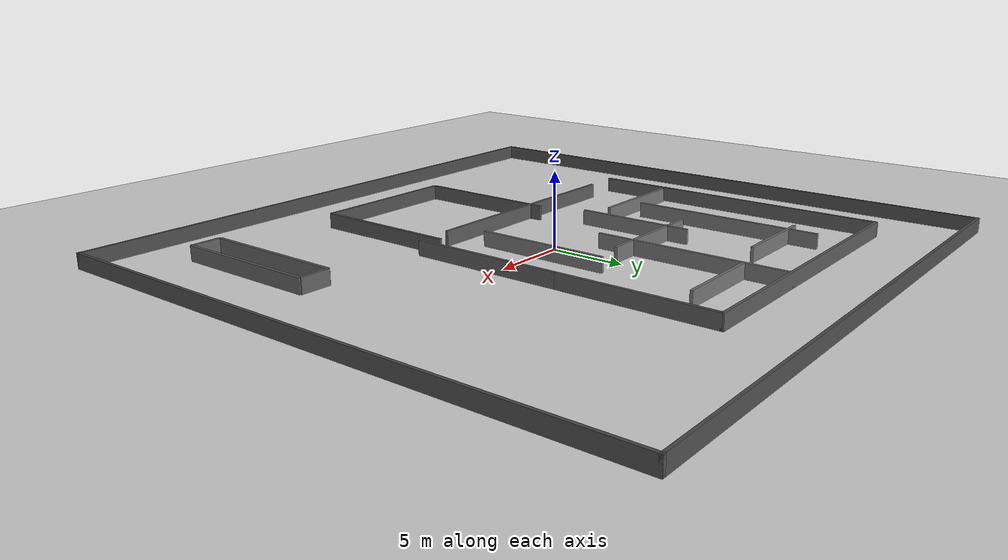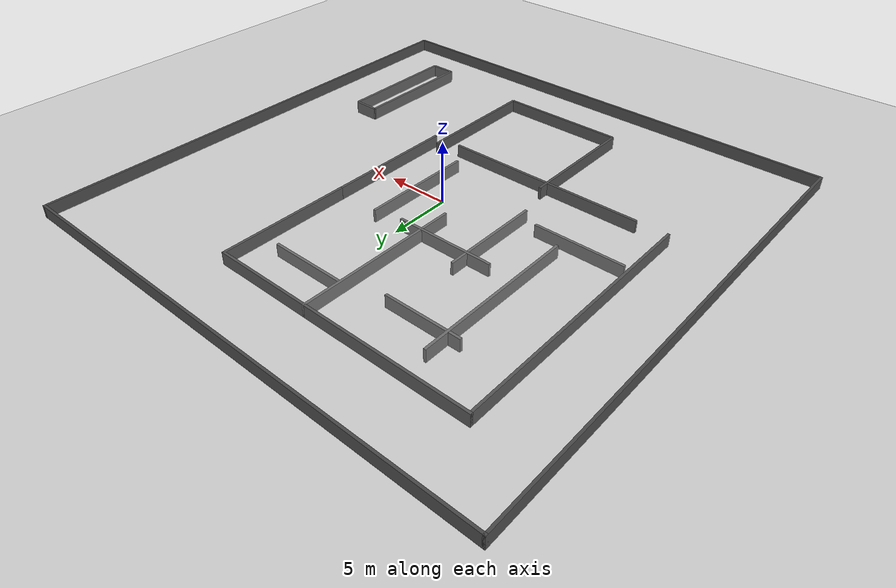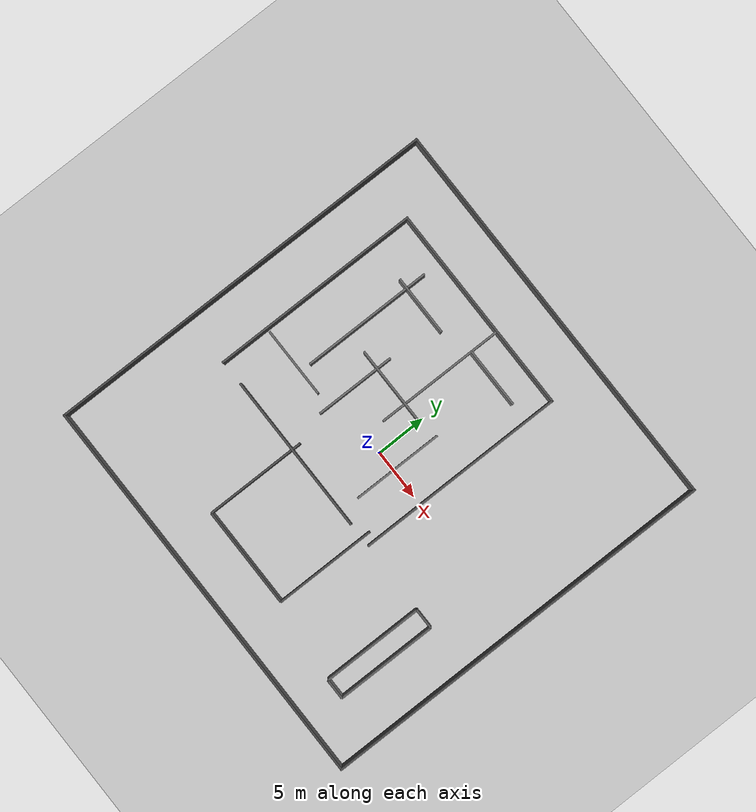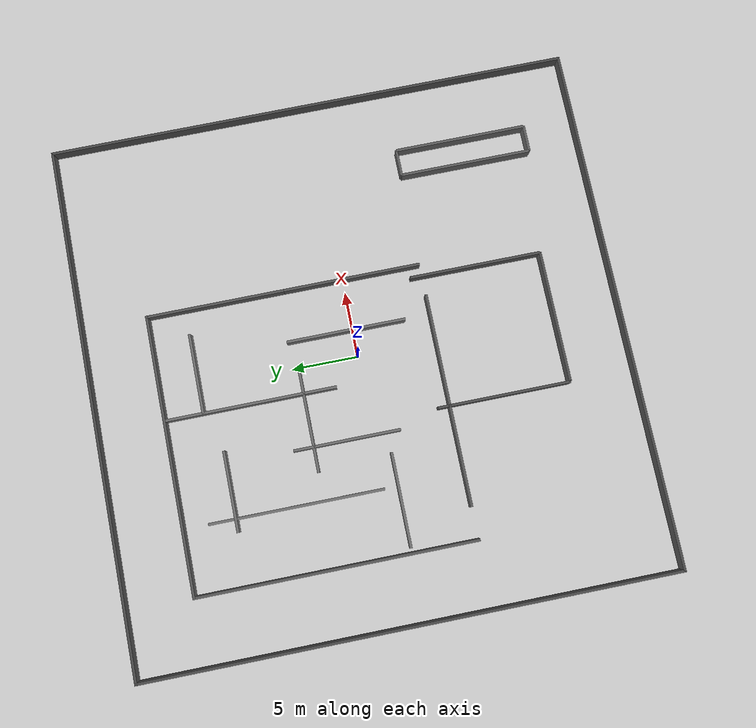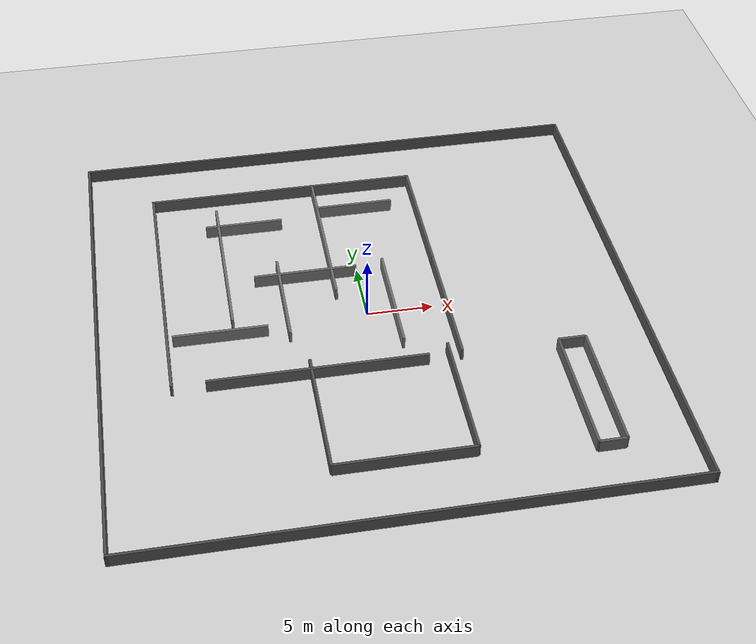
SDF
<?xml version="1.0" ?>
<sdf version="1.9">
  <world name="maze_world">
    <physics name="1ms" default="true" type="ode">
      <max_step_size>0.001</max_step_size>
      <real_time_factor>1.0</real_time_factor>
      <real_time_update_rate>1000.0</real_time_update_rate>
    </physics>

    <plugin filename="gz-sim-physics-system" name="gz::sim::systems::Physics">
    </plugin>
    <plugin filename="gz-sim-user-commands-system" name="gz::sim::systems::UserCommands">
    </plugin>
    <plugin filename="gz-sim-scene-broadcaster-system" name="gz::sim::systems::SceneBroadcaster">
    </plugin>

    <scene>
      <ambient>0.4 0.4 0.4 1.0</ambient>
      <background>0.7 0.7 0.8 1.0</background>
      <shadows>true</shadows>
    </scene>

    <light type="directional" name="sun">
      <cast_shadows>true</cast_shadows>
      <pose>0 0 10 0 0 0</pose>
      <diffuse>0.8 0.8 0.8 1</diffuse>
      <specular>0.2 0.2 0.2 1</specular>
      <direction>-0.5 0.1 -0.9</direction>
    </light>

    <model name="ground_plane">
      <static>true</static>
      <link name="link">
        <collision name="collision">
          <geometry>
            <plane>
              <normal>0 0 1</normal>
              <size>60 60</size>
            </plane>
          </geometry>
        </collision>
        <visual name="visual">
          <geometry>
            <plane>
              <normal>0 0 1</normal>
              <size>60 60</size>
            </plane>
          </geometry>
          <material>
            <ambient>0.85 0.85 0.85 1</ambient>
            <diffuse>0.85 0.85 0.85 1</diffuse>
          </material>
        </visual>
      </link>
    </model>

    <model name="maze_walls">
      <static>true</static>

      <link name="wall_outer_1">
        <pose>0 -19.9 0.5 0 0 0</pose>
        <collision name="collision"><geometry><box><size>40 0.2 1.0</size></box></geometry></collision>
        <visual name="visual"><geometry><box><size>40 0.2 1.0</size></box></geometry><material><ambient>0.3 0.3 0.3 1</ambient><diffuse>0.3 0.3 0.3 1</diffuse></material></visual>
      </link>
      <link name="wall_outer_2">
        <pose>0 19.9 0.5 0 0 0</pose>
        <collision name="collision"><geometry><box><size>40 0.2 1.0</size></box></geometry></collision>
        <visual name="visual"><geometry><box><size>40 0.2 1.0</size></box></geometry><material><ambient>0.3 0.3 0.3 1</ambient><diffuse>0.3 0.3 0.3 1</diffuse></material></visual>
      </link>
      <link name="wall_outer_3">
        <pose>-19.9 0 0.5 0 0 0</pose>
        <collision name="collision"><geometry><box><size>0.2 40 1.0</size></box></geometry></collision>
        <visual name="visual"><geometry><box><size>0.2 40 1.0</size></box></geometry><material><ambient>0.3 0.3 0.3 1</ambient><diffuse>0.3 0.3 0.3 1</diffuse></material></visual>
      </link>
      <link name="wall_outer_4">
        <pose>19.9 0 0.5 0 0 0</pose>
        <collision name="collision"><geometry><box><size>0.2 40 1.0</size></box></geometry></collision>
        <visual name="visual"><geometry><box><size>0.2 40 1.0</size></box></geometry><material><ambient>0.3 0.3 0.3 1</ambient><diffuse>0.3 0.3 0.3 1</diffuse></material></visual>
      </link>

      <link name="maze_border_north">
        <pose>-4.5 14.9 0.5 0 0 0</pose>
        <collision name="collision"><geometry><box><size>21.0 0.2 1.0</size></box></geometry></collision>
        <visual name="visual"><geometry><box><size>21.0 0.2 1.0</size></box></geometry><material><ambient>0.35 0.35 0.35 1</ambient><diffuse>0.35 0.35 0.35 1</diffuse></material></visual>
      </link>
      <link name="maze_border_west">
        <pose>-14.9 4.5 0.5 0 0 0</pose>
        <collision name="collision"><geometry><box><size>0.2 21.0 1.0</size></box></geometry></collision>
        <visual name="visual"><geometry><box><size>0.2 21.0 1.0</size></box></geometry><material><ambient>0.35 0.35 0.35 1</ambient><diffuse>0.35 0.35 0.35 1</diffuse></material></visual>
      </link>
      <link name="maze_border_south">
        <pose>-4.5 -5.9 0.5 0 0 0</pose>
        <collision name="collision"><geometry><box><size>16.0 0.2 1.0</size></box></geometry></collision>
        <visual name="visual"><geometry><box><size>16.0 0.2 1.0</size></box></geometry><material><ambient>0.35 0.35 0.35 1</ambient><diffuse>0.35 0.35 0.35 1</diffuse></material></visual>
      </link>
      <link name="maze_border_east_upper">
        <pose>5.9 9.7 0.5 0 0 0</pose>
        <collision name="collision"><geometry><box><size>0.2 10.4 1.0</size></box></geometry></collision>
        <visual name="visual"><geometry><box><size>0.2 10.4 1.0</size></box></geometry><material><ambient>0.35 0.35 0.35 1</ambient><diffuse>0.35 0.35 0.35 1</diffuse></material></visual>
      </link>
      <link name="maze_border_east_lower">
        <pose>5.9 -0.7 0.5 0 0 0</pose>
        <collision name="collision"><geometry><box><size>0.2 10.4 1.0</size></box></geometry></collision>
        <visual name="visual"><geometry><box><size>0.2 10.4 1.0</size></box></geometry><material><ambient>0.35 0.35 0.35 1</ambient><diffuse>0.35 0.35 0.35 1</diffuse></material></visual>
      </link>

      <link name="maze_v1">
        <pose>-10.0 6.5 0.5 0 0 0</pose>
        <collision name="collision"><geometry><box><size>0.2 13.0 1.0</size></box></geometry></collision>
        <visual name="visual"><geometry><box><size>0.2 13.0 1.0</size></box></geometry><material><ambient>0.45 0.45 0.45 1</ambient><diffuse>0.45 0.45 0.45 1</diffuse></material></visual>
      </link>
      <link name="maze_v2">
        <pose>-6.0 2.0 0.5 0 0 0</pose>
        <collision name="collision"><geometry><box><size>0.2 8.0 1.0</size></box></geometry></collision>
        <visual name="visual"><geometry><box><size>0.2 8.0 1.0</size></box></geometry><material><ambient>0.45 0.45 0.45 1</ambient><diffuse>0.45 0.45 0.45 1</diffuse></material></visual>
      </link>
      <link name="maze_v3">
        <pose>-2.0 8.5 0.5 0 0 0</pose>
        <collision name="collision"><geometry><box><size>0.2 13.0 1.0</size></box></geometry></collision>
        <visual name="visual"><geometry><box><size>0.2 13.0 1.0</size></box></geometry><material><ambient>0.45 0.45 0.45 1</ambient><diffuse>0.45 0.45 0.45 1</diffuse></material></visual>
      </link>
      <link name="maze_v4">
        <pose>2.0 0.5 0.5 0 0 0</pose>
        <collision name="collision"><geometry><box><size>0.2 9.0 1.0</size></box></geometry></collision>
        <visual name="visual"><geometry><box><size>0.2 9.0 1.0</size></box></geometry><material><ambient>0.45 0.45 0.45 1</ambient><diffuse>0.45 0.45 0.45 1</diffuse></material></visual>
      </link>
      <link name="maze_h1">
        <pose>-8.0 11.0 0.5 0 0 0</pose>
        <collision name="collision"><geometry><box><size>6.0 0.2 1.0</size></box></geometry></collision>
        <visual name="visual"><geometry><box><size>6.0 0.2 1.0</size></box></geometry><material><ambient>0.45 0.45 0.45 1</ambient><diffuse>0.45 0.45 0.45 1</diffuse></material></visual>
      </link>
      <link name="maze_h2">
        <pose>-4.0 4.5 0.5 0 0 0</pose>
        <collision name="collision"><geometry><box><size>7.8 0.2 1.0</size></box></geometry></collision>
        <visual name="visual"><geometry><box><size>7.8 0.2 1.0</size></box></geometry><material><ambient>0.45 0.45 0.45 1</ambient><diffuse>0.45 0.45 0.45 1</diffuse></material></visual>
      </link>
      <link name="maze_h3">
        <pose>-11.0 -1.0 0.5 0 0 0</pose>
        <collision name="collision"><geometry><box><size>7.0 0.2 1.0</size></box></geometry></collision>
        <visual name="visual"><geometry><box><size>7.0 0.2 1.0</size></box></geometry><material><ambient>0.45 0.45 0.45 1</ambient><diffuse>0.45 0.45 0.45 1</diffuse></material></visual>
      </link>
      <link name="maze_h4">
        <pose>1.0 12.0 0.5 0 0 0</pose>
        <collision name="collision"><geometry><box><size>6.0 0.2 1.0</size></box></geometry></collision>
        <visual name="visual"><geometry><box><size>6.0 0.2 1.0</size></box></geometry><material><ambient>0.45 0.45 0.45 1</ambient><diffuse>0.45 0.45 0.45 1</diffuse></material></visual>
      </link>

      <link name="open_area_south">
        <pose>0.0 -15.0 0.5 0 0 0</pose>
        <collision name="collision"><geometry><box><size>10.0 0.2 1.0</size></box></geometry></collision>
        <visual name="visual"><geometry><box><size>10.0 0.2 1.0</size></box></geometry><material><ambient>0.32 0.32 0.32 1</ambient><diffuse>0.32 0.32 0.32 1</diffuse></material></visual>
      </link>
      <link name="open_area_west">
        <pose>-5.0 -10.0 0.5 0 0 0</pose>
        <collision name="collision"><geometry><box><size>0.2 10.0 1.0</size></box></geometry></collision>
        <visual name="visual"><geometry><box><size>0.2 10.0 1.0</size></box></geometry><material><ambient>0.32 0.32 0.32 1</ambient><diffuse>0.32 0.32 0.32 1</diffuse></material></visual>
      </link>
      <link name="open_area_east">
        <pose>5.0 -10.0 0.5 0 0 0</pose>
        <collision name="collision"><geometry><box><size>0.2 10.0 1.0</size></box></geometry></collision>
        <visual name="visual"><geometry><box><size>0.2 10.0 1.0</size></box></geometry><material><ambient>0.32 0.32 0.32 1</ambient><diffuse>0.32 0.32 0.32 1</diffuse></material></visual>
      </link>

      <link name="corridor_wall_west">
        <pose>13.0 -11.0 0.5 0 0 0</pose>
        <collision name="collision"><geometry><box><size>0.2 10.0 1.0</size></box></geometry></collision>
        <visual name="visual"><geometry><box><size>0.2 10.0 1.0</size></box></geometry><material><ambient>0.38 0.38 0.38 1</ambient><diffuse>0.38 0.38 0.38 1</diffuse></material></visual>
      </link>
      <link name="corridor_wall_east">
        <pose>15.0 -11.0 0.5 0 0 0</pose>
        <collision name="collision"><geometry><box><size>0.2 10.0 1.0</size></box></geometry></collision>
        <visual name="visual"><geometry><box><size>0.2 10.0 1.0</size></box></geometry><material><ambient>0.38 0.38 0.38 1</ambient><diffuse>0.38 0.38 0.38 1</diffuse></material></visual>
      </link>
      <link name="corridor_cap_north">
        <pose>14.0 -6.0 0.5 0 0 0</pose>
        <collision name="collision"><geometry><box><size>2.0 0.2 1.0</size></box></geometry></collision>
        <visual name="visual"><geometry><box><size>2.0 0.2 1.0</size></box></geometry><material><ambient>0.38 0.38 0.38 1</ambient><diffuse>0.38 0.38 0.38 1</diffuse></material></visual>
      </link>
      <link name="corridor_cap_south">
        <pose>14.0 -16.0 0.5 0 0 0</pose>
        <collision name="collision"><geometry><box><size>2.0 0.2 1.0</size></box></geometry></collision>
        <visual name="visual"><geometry><box><size>2.0 0.2 1.0</size></box></geometry><material><ambient>0.38 0.38 0.38 1</ambient><diffuse>0.38 0.38 0.38 1</diffuse></material></visual>
      </link>
    </model>
  </world>
</sdf>
